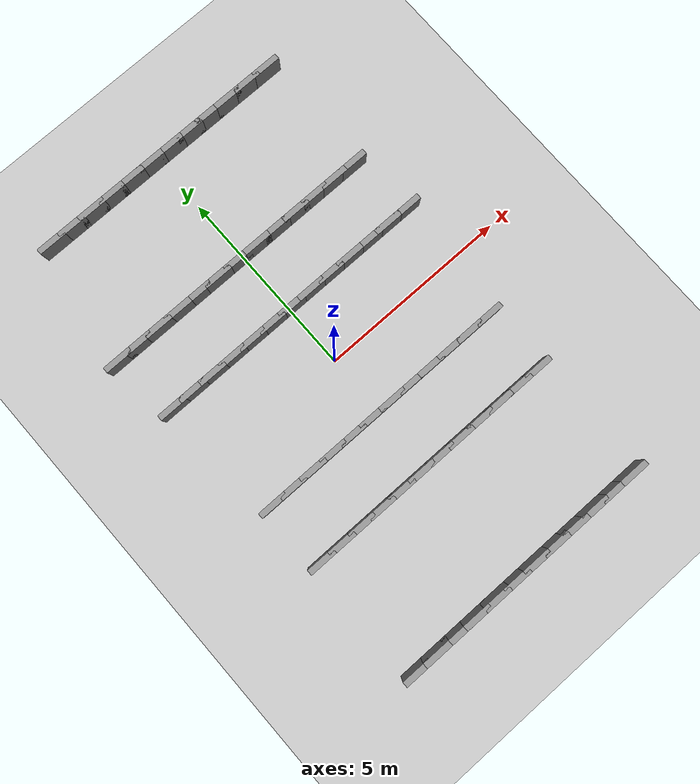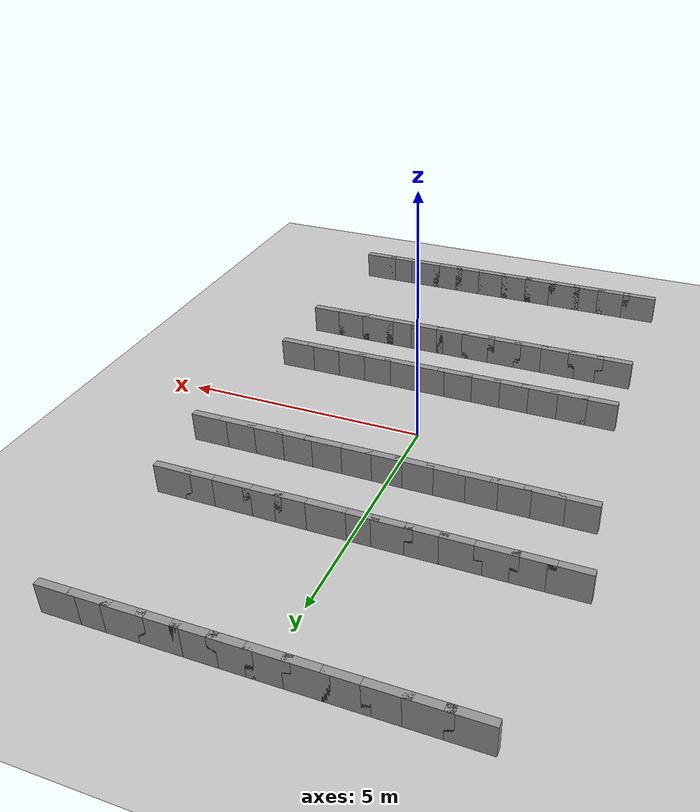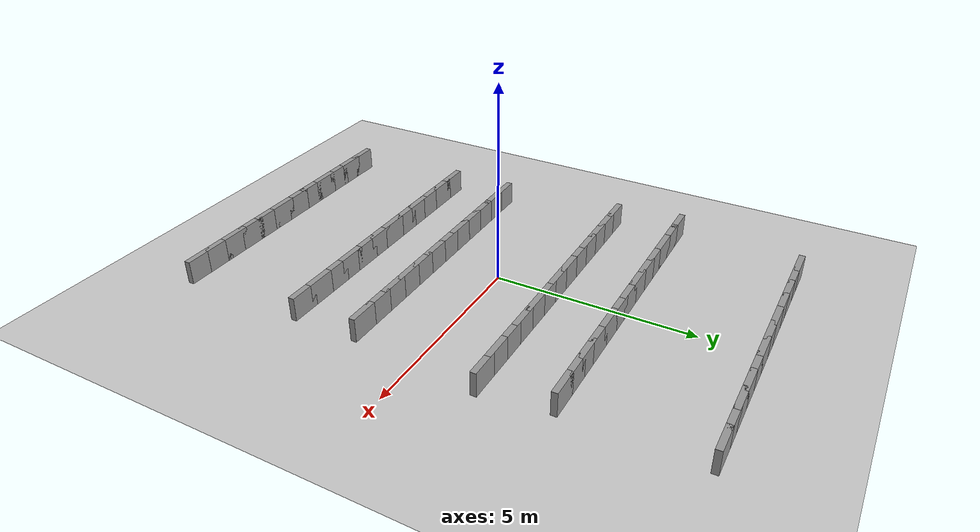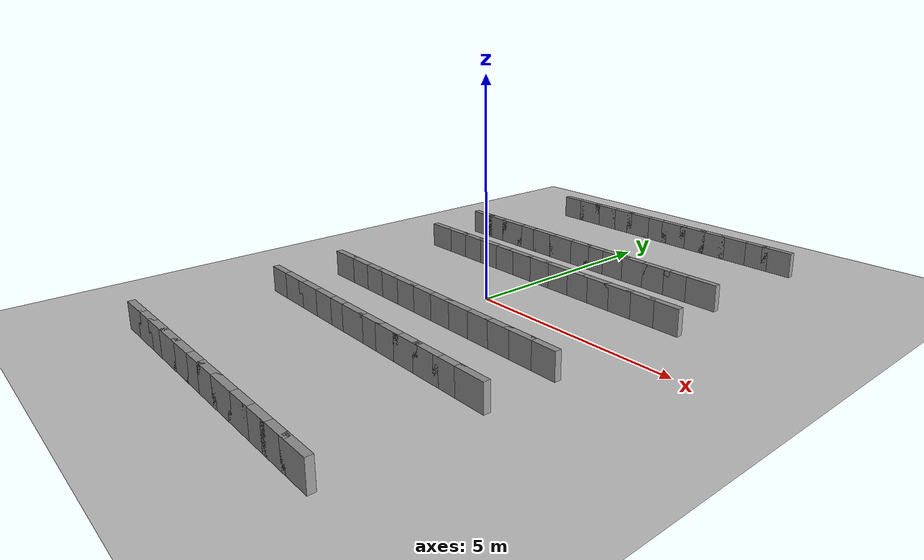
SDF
<sdf version="1.7">
 <world name="default">
  <model name="ground_plane">
   <static>1</static>
   <link name="link">
    <collision name="collision">
     <geometry><plane><normal>0 0 1</normal><size>100 100</size></plane></geometry>
     <surface><friction><ode><mu>100</mu><mu2>50</mu2></ode></friction></surface>
    </collision>
    <visual name="visual">
     <cast_shadows>0</cast_shadows>
     <geometry><plane><normal>0 0 1</normal><size>100 100</size></plane></geometry>
     <material>
      <script><uri>file://media/materials/scripts/gazebo.material</uri><name>Gazebo/Grey</name></script>
     </material>
    </visual>
   </link>
  </model>
  <model name="rand_serp_01">
   <link name="Wall_9">
    <collision name="Wall_9_Collision">
     <geometry><box><size>0.7500 0.1500 0.6000</size></box></geometry>
     <pose>0 0 0.3000 0 -0 0</pose>
    </collision>
    <visual name="Wall_9_Visual">
     <pose>0 0 0.3000 0 -0 0</pose>
     <geometry><box><size>0.7500 0.1500 0.6000</size></box></geometry>
     <material>
      <script><uri>file://media/materials/scripts/gazebo.material</uri><name>Gazebo/Grey</name></script>
      <ambient>1 1 1 1</ambient>
     </material>
    </visual>
    <pose>-3.1786 6.4421 0 0 -0 0.00000</pose>
   </link>
   <link name="Wall_10">
    <collision name="Wall_10_Collision">
     <geometry><box><size>0.7500 0.1500 0.6000</size></box></geometry>
     <pose>0 0 0.3000 0 -0 0</pose>
    </collision>
    <visual name="Wall_10_Visual">
     <pose>0 0 0.3000 0 -0 0</pose>
     <geometry><box><size>0.7500 0.1500 0.6000</size></box></geometry>
     <material>
      <script><uri>file://media/materials/scripts/gazebo.material</uri><name>Gazebo/Grey</name></script>
      <ambient>1 1 1 1</ambient>
     </material>
    </visual>
    <pose>-2.5786 6.4421 0 0 -0 0.00000</pose>
   </link>
   <link name="Wall_11">
    <collision name="Wall_11_Collision">
     <geometry><box><size>0.7500 0.1500 0.6000</size></box></geometry>
     <pose>0 0 0.3000 0 -0 0</pose>
    </collision>
    <visual name="Wall_11_Visual">
     <pose>0 0 0.3000 0 -0 0</pose>
     <geometry><box><size>0.7500 0.1500 0.6000</size></box></geometry>
     <material>
      <script><uri>file://media/materials/scripts/gazebo.material</uri><name>Gazebo/Grey</name></script>
      <ambient>1 1 1 1</ambient>
     </material>
    </visual>
    <pose>-1.9786 6.4421 0 0 -0 0.00000</pose>
   </link>
   <link name="Wall_12">
    <collision name="Wall_12_Collision">
     <geometry><box><size>0.7500 0.1500 0.6000</size></box></geometry>
     <pose>0 0 0.3000 0 -0 0</pose>
    </collision>
    <visual name="Wall_12_Visual">
     <pose>0 0 0.3000 0 -0 0</pose>
     <geometry><box><size>0.7500 0.1500 0.6000</size></box></geometry>
     <material>
      <script><uri>file://media/materials/scripts/gazebo.material</uri><name>Gazebo/Grey</name></script>
      <ambient>1 1 1 1</ambient>
     </material>
    </visual>
    <pose>-1.3786 6.4421 0 0 -0 0.00000</pose>
   </link>
   <link name="Wall_13">
    <collision name="Wall_13_Collision">
     <geometry><box><size>0.7500 0.1500 0.6000</size></box></geometry>
     <pose>0 0 0.3000 0 -0 0</pose>
    </collision>
    <visual name="Wall_13_Visual">
     <pose>0 0 0.3000 0 -0 0</pose>
     <geometry><box><size>0.7500 0.1500 0.6000</size></box></geometry>
     <material>
      <script><uri>file://media/materials/scripts/gazebo.material</uri><name>Gazebo/Grey</name></script>
      <ambient>1 1 1 1</ambient>
     </material>
    </visual>
    <pose>-0.7786 6.4421 0 0 -0 0.00000</pose>
   </link>
   <link name="Wall_14">
    <collision name="Wall_14_Collision">
     <geometry><box><size>0.7500 0.1500 0.6000</size></box></geometry>
     <pose>0 0 0.3000 0 -0 0</pose>
    </collision>
    <visual name="Wall_14_Visual">
     <pose>0 0 0.3000 0 -0 0</pose>
     <geometry><box><size>0.7500 0.1500 0.6000</size></box></geometry>
     <material>
      <script><uri>file://media/materials/scripts/gazebo.material</uri><name>Gazebo/Grey</name></script>
      <ambient>1 1 1 1</ambient>
     </material>
    </visual>
    <pose>-0.1786 6.4421 0 0 -0 0.00000</pose>
   </link>
   <link name="Wall_15">
    <collision name="Wall_15_Collision">
     <geometry><box><size>0.7500 0.1500 0.6000</size></box></geometry>
     <pose>0 0 0.3000 0 -0 0</pose>
    </collision>
    <visual name="Wall_15_Visual">
     <pose>0 0 0.3000 0 -0 0</pose>
     <geometry><box><size>0.7500 0.1500 0.6000</size></box></geometry>
     <material>
      <script><uri>file://media/materials/scripts/gazebo.material</uri><name>Gazebo/Grey</name></script>
      <ambient>1 1 1 1</ambient>
     </material>
    </visual>
    <pose>0.4214 6.4421 0 0 -0 0.00000</pose>
   </link>
   <link name="Wall_16">
    <collision name="Wall_16_Collision">
     <geometry><box><size>0.7500 0.1500 0.6000</size></box></geometry>
     <pose>0 0 0.3000 0 -0 0</pose>
    </collision>
    <visual name="Wall_16_Visual">
     <pose>0 0 0.3000 0 -0 0</pose>
     <geometry><box><size>0.7500 0.1500 0.6000</size></box></geometry>
     <material>
      <script><uri>file://media/materials/scripts/gazebo.material</uri><name>Gazebo/Grey</name></script>
      <ambient>1 1 1 1</ambient>
     </material>
    </visual>
    <pose>1.0214 6.4421 0 0 -0 0.00000</pose>
   </link>
   <link name="Wall_17">
    <collision name="Wall_17_Collision">
     <geometry><box><size>0.7500 0.1500 0.6000</size></box></geometry>
     <pose>0 0 0.3000 0 -0 0</pose>
    </collision>
    <visual name="Wall_17_Visual">
     <pose>0 0 0.3000 0 -0 0</pose>
     <geometry><box><size>0.7500 0.1500 0.6000</size></box></geometry>
     <material>
      <script><uri>file://media/materials/scripts/gazebo.material</uri><name>Gazebo/Grey</name></script>
      <ambient>1 1 1 1</ambient>
     </material>
    </visual>
    <pose>1.6214 6.4421 0 0 -0 0.00000</pose>
   </link>
   <link name="Wall_18">
    <collision name="Wall_18_Collision">
     <geometry><box><size>0.7500 0.1500 0.6000</size></box></geometry>
     <pose>0 0 0.3000 0 -0 0</pose>
    </collision>
    <visual name="Wall_18_Visual">
     <pose>0 0 0.3000 0 -0 0</pose>
     <geometry><box><size>0.7500 0.1500 0.6000</size></box></geometry>
     <material>
      <script><uri>file://media/materials/scripts/gazebo.material</uri><name>Gazebo/Grey</name></script>
      <ambient>1 1 1 1</ambient>
     </material>
    </visual>
    <pose>2.2214 6.4421 0 0 -0 0.00000</pose>
   </link>
   <link name="Wall_19">
    <collision name="Wall_19_Collision">
     <geometry><box><size>0.7500 0.1500 0.6000</size></box></geometry>
     <pose>0 0 0.3000 0 -0 0</pose>
    </collision>
    <visual name="Wall_19_Visual">
     <pose>0 0 0.3000 0 -0 0</pose>
     <geometry><box><size>0.7500 0.1500 0.6000</size></box></geometry>
     <material>
      <script><uri>file://media/materials/scripts/gazebo.material</uri><name>Gazebo/Grey</name></script>
      <ambient>1 1 1 1</ambient>
     </material>
    </visual>
    <pose>2.8214 6.4421 0 0 -0 0.00000</pose>
   </link>
   <link name="Wall_20">
    <collision name="Wall_20_Collision">
     <geometry><box><size>0.7500 0.1500 0.6000</size></box></geometry>
     <pose>0 0 0.3000 0 -0 0</pose>
    </collision>
    <visual name="Wall_20_Visual">
     <pose>0 0 0.3000 0 -0 0</pose>
     <geometry><box><size>0.7500 0.1500 0.6000</size></box></geometry>
     <material>
      <script><uri>file://media/materials/scripts/gazebo.material</uri><name>Gazebo/Grey</name></script>
      <ambient>1 1 1 1</ambient>
     </material>
    </visual>
    <pose>3.4214 6.4421 0 0 -0 0.00000</pose>
   </link>
   <link name="Wall_57">
    <collision name="Wall_57_Collision">
     <geometry><box><size>0.7500 0.1500 0.6000</size></box></geometry>
     <pose>0 0 0.3000 0 -0 0</pose>
    </collision>
    <visual name="Wall_57_Visual">
     <pose>0 0 0.3000 0 -0 0</pose>
     <geometry><box><size>0.7500 0.1500 0.6000</size></box></geometry>
     <material>
      <script><uri>file://media/materials/scripts/gazebo.material</uri><name>Gazebo/Grey</name></script>
      <ambient>1 1 1 1</ambient>
     </material>
    </visual>
    <pose>3.3555 -1.5924 0 0 -0 3.14159</pose>
   </link>
   <link name="Wall_58">
    <collision name="Wall_58_Collision">
     <geometry><box><size>0.7500 0.1500 0.6000</size></box></geometry>
     <pose>0 0 0.3000 0 -0 0</pose>
    </collision>
    <visual name="Wall_58_Visual">
     <pose>0 0 0.3000 0 -0 0</pose>
     <geometry><box><size>0.7500 0.1500 0.6000</size></box></geometry>
     <material>
      <script><uri>file://media/materials/scripts/gazebo.material</uri><name>Gazebo/Grey</name></script>
      <ambient>1 1 1 1</ambient>
     </material>
    </visual>
    <pose>2.7555 -1.5924 0 0 -0 3.14159</pose>
   </link>
   <link name="Wall_59">
    <collision name="Wall_59_Collision">
     <geometry><box><size>0.7500 0.1500 0.6000</size></box></geometry>
     <pose>0 0 0.3000 0 -0 0</pose>
    </collision>
    <visual name="Wall_59_Visual">
     <pose>0 0 0.3000 0 -0 0</pose>
     <geometry><box><size>0.7500 0.1500 0.6000</size></box></geometry>
     <material>
      <script><uri>file://media/materials/scripts/gazebo.material</uri><name>Gazebo/Grey</name></script>
      <ambient>1 1 1 1</ambient>
     </material>
    </visual>
    <pose>2.1555 -1.5924 0 0 -0 3.14159</pose>
   </link>
   <link name="Wall_60">
    <collision name="Wall_60_Collision">
     <geometry><box><size>0.7500 0.1500 0.6000</size></box></geometry>
     <pose>0 0 0.3000 0 -0 0</pose>
    </collision>
    <visual name="Wall_60_Visual">
     <pose>0 0 0.3000 0 -0 0</pose>
     <geometry><box><size>0.7500 0.1500 0.6000</size></box></geometry>
     <material>
      <script><uri>file://media/materials/scripts/gazebo.material</uri><name>Gazebo/Grey</name></script>
      <ambient>1 1 1 1</ambient>
     </material>
    </visual>
    <pose>1.5555 -1.5924 0 0 -0 3.14159</pose>
   </link>
   <link name="Wall_61">
    <collision name="Wall_61_Collision">
     <geometry><box><size>0.7500 0.1500 0.6000</size></box></geometry>
     <pose>0 0 0.3000 0 -0 0</pose>
    </collision>
    <visual name="Wall_61_Visual">
     <pose>0 0 0.3000 0 -0 0</pose>
     <geometry><box><size>0.7500 0.1500 0.6000</size></box></geometry>
     <material>
      <script><uri>file://media/materials/scripts/gazebo.material</uri><name>Gazebo/Grey</name></script>
      <ambient>1 1 1 1</ambient>
     </material>
    </visual>
    <pose>0.9555 -1.5924 0 0 -0 3.14159</pose>
   </link>
   <link name="Wall_62">
    <collision name="Wall_62_Collision">
     <geometry><box><size>0.7500 0.1500 0.6000</size></box></geometry>
     <pose>0 0 0.3000 0 -0 0</pose>
    </collision>
    <visual name="Wall_62_Visual">
     <pose>0 0 0.3000 0 -0 0</pose>
     <geometry><box><size>0.7500 0.1500 0.6000</size></box></geometry>
     <material>
      <script><uri>file://media/materials/scripts/gazebo.material</uri><name>Gazebo/Grey</name></script>
      <ambient>1 1 1 1</ambient>
     </material>
    </visual>
    <pose>0.3555 -1.5924 0 0 -0 3.14159</pose>
   </link>
   <link name="Wall_63">
    <collision name="Wall_63_Collision">
     <geometry><box><size>0.7500 0.1500 0.6000</size></box></geometry>
     <pose>0 0 0.3000 0 -0 0</pose>
    </collision>
    <visual name="Wall_63_Visual">
     <pose>0 0 0.3000 0 -0 0</pose>
     <geometry><box><size>0.7500 0.1500 0.6000</size></box></geometry>
     <material>
      <script><uri>file://media/materials/scripts/gazebo.material</uri><name>Gazebo/Grey</name></script>
      <ambient>1 1 1 1</ambient>
     </material>
    </visual>
    <pose>-0.2445 -1.5924 0 0 -0 3.14159</pose>
   </link>
   <link name="Wall_64">
    <collision name="Wall_64_Collision">
     <geometry><box><size>0.7500 0.1500 0.6000</size></box></geometry>
     <pose>0 0 0.3000 0 -0 0</pose>
    </collision>
    <visual name="Wall_64_Visual">
     <pose>0 0 0.3000 0 -0 0</pose>
     <geometry><box><size>0.7500 0.1500 0.6000</size></box></geometry>
     <material>
      <script><uri>file://media/materials/scripts/gazebo.material</uri><name>Gazebo/Grey</name></script>
      <ambient>1 1 1 1</ambient>
     </material>
    </visual>
    <pose>-0.8445 -1.5924 0 0 -0 3.14159</pose>
   </link>
   <link name="Wall_65">
    <collision name="Wall_65_Collision">
     <geometry><box><size>0.7500 0.1500 0.6000</size></box></geometry>
     <pose>0 0 0.3000 0 -0 0</pose>
    </collision>
    <visual name="Wall_65_Visual">
     <pose>0 0 0.3000 0 -0 0</pose>
     <geometry><box><size>0.7500 0.1500 0.6000</size></box></geometry>
     <material>
      <script><uri>file://media/materials/scripts/gazebo.material</uri><name>Gazebo/Grey</name></script>
      <ambient>1 1 1 1</ambient>
     </material>
    </visual>
    <pose>-1.4445 -1.5924 0 0 -0 3.14159</pose>
   </link>
   <link name="Wall_66">
    <collision name="Wall_66_Collision">
     <geometry><box><size>0.7500 0.1500 0.6000</size></box></geometry>
     <pose>0 0 0.3000 0 -0 0</pose>
    </collision>
    <visual name="Wall_66_Visual">
     <pose>0 0 0.3000 0 -0 0</pose>
     <geometry><box><size>0.7500 0.1500 0.6000</size></box></geometry>
     <material>
      <script><uri>file://media/materials/scripts/gazebo.material</uri><name>Gazebo/Grey</name></script>
      <ambient>1 1 1 1</ambient>
     </material>
    </visual>
    <pose>-2.0445 -1.5924 0 0 -0 3.14159</pose>
   </link>
   <link name="Wall_67">
    <collision name="Wall_67_Collision">
     <geometry><box><size>0.7500 0.1500 0.6000</size></box></geometry>
     <pose>0 0 0.3000 0 -0 0</pose>
    </collision>
    <visual name="Wall_67_Visual">
     <pose>0 0 0.3000 0 -0 0</pose>
     <geometry><box><size>0.7500 0.1500 0.6000</size></box></geometry>
     <material>
      <script><uri>file://media/materials/scripts/gazebo.material</uri><name>Gazebo/Grey</name></script>
      <ambient>1 1 1 1</ambient>
     </material>
    </visual>
    <pose>-2.6445 -1.5924 0 0 -0 3.14159</pose>
   </link>
   <link name="Wall_68">
    <collision name="Wall_68_Collision">
     <geometry><box><size>0.7500 0.1500 0.6000</size></box></geometry>
     <pose>0 0 0.3000 0 -0 0</pose>
    </collision>
    <visual name="Wall_68_Visual">
     <pose>0 0 0.3000 0 -0 0</pose>
     <geometry><box><size>0.7500 0.1500 0.6000</size></box></geometry>
     <material>
      <script><uri>file://media/materials/scripts/gazebo.material</uri><name>Gazebo/Grey</name></script>
      <ambient>1 1 1 1</ambient>
     </material>
    </visual>
    <pose>-3.2445 -1.5924 0 0 -0 3.14159</pose>
   </link>
   <link name="Wall_89">
    <collision name="Wall_89_Collision">
     <geometry><box><size>0.7500 0.1500 0.6000</size></box></geometry>
     <pose>0 0 0.3000 0 -0 0</pose>
    </collision>
    <visual name="Wall_89_Visual">
     <pose>0 0 0.3000 0 -0 0</pose>
     <geometry><box><size>0.7500 0.1500 0.6000</size></box></geometry>
     <material>
      <script><uri>file://media/materials/scripts/gazebo.material</uri><name>Gazebo/Grey</name></script>
      <ambient>1 1 1 1</ambient>
     </material>
    </visual>
    <pose>-3.2357 -3.2573 0 0 -0 0.00000</pose>
   </link>
   <link name="Wall_90">
    <collision name="Wall_90_Collision">
     <geometry><box><size>0.7500 0.1500 0.6000</size></box></geometry>
     <pose>0 0 0.3000 0 -0 0</pose>
    </collision>
    <visual name="Wall_90_Visual">
     <pose>0 0 0.3000 0 -0 0</pose>
     <geometry><box><size>0.7500 0.1500 0.6000</size></box></geometry>
     <material>
      <script><uri>file://media/materials/scripts/gazebo.material</uri><name>Gazebo/Grey</name></script>
      <ambient>1 1 1 1</ambient>
     </material>
    </visual>
    <pose>-2.6357 -3.2573 0 0 -0 0.00000</pose>
   </link>
   <link name="Wall_91">
    <collision name="Wall_91_Collision">
     <geometry><box><size>0.7500 0.1500 0.6000</size></box></geometry>
     <pose>0 0 0.3000 0 -0 0</pose>
    </collision>
    <visual name="Wall_91_Visual">
     <pose>0 0 0.3000 0 -0 0</pose>
     <geometry><box><size>0.7500 0.1500 0.6000</size></box></geometry>
     <material>
      <script><uri>file://media/materials/scripts/gazebo.material</uri><name>Gazebo/Grey</name></script>
      <ambient>1 1 1 1</ambient>
     </material>
    </visual>
    <pose>-2.0357 -3.2573 0 0 -0 0.00000</pose>
   </link>
   <link name="Wall_92">
    <collision name="Wall_92_Collision">
     <geometry><box><size>0.7500 0.1500 0.6000</size></box></geometry>
     <pose>0 0 0.3000 0 -0 0</pose>
    </collision>
    <visual name="Wall_92_Visual">
     <pose>0 0 0.3000 0 -0 0</pose>
     <geometry><box><size>0.7500 0.1500 0.6000</size></box></geometry>
     <material>
      <script><uri>file://media/materials/scripts/gazebo.material</uri><name>Gazebo/Grey</name></script>
      <ambient>1 1 1 1</ambient>
     </material>
    </visual>
    <pose>-1.4357 -3.2573 0 0 -0 0.00000</pose>
   </link>
   <link name="Wall_93">
    <collision name="Wall_93_Collision">
     <geometry><box><size>0.7500 0.1500 0.6000</size></box></geometry>
     <pose>0 0 0.3000 0 -0 0</pose>
    </collision>
    <visual name="Wall_93_Visual">
     <pose>0 0 0.3000 0 -0 0</pose>
     <geometry><box><size>0.7500 0.1500 0.6000</size></box></geometry>
     <material>
      <script><uri>file://media/materials/scripts/gazebo.material</uri><name>Gazebo/Grey</name></script>
      <ambient>1 1 1 1</ambient>
     </material>
    </visual>
    <pose>-0.8357 -3.2573 0 0 -0 0.00000</pose>
   </link>
   <link name="Wall_94">
    <collision name="Wall_94_Collision">
     <geometry><box><size>0.7500 0.1500 0.6000</size></box></geometry>
     <pose>0 0 0.3000 0 -0 0</pose>
    </collision>
    <visual name="Wall_94_Visual">
     <pose>0 0 0.3000 0 -0 0</pose>
     <geometry><box><size>0.7500 0.1500 0.6000</size></box></geometry>
     <material>
      <script><uri>file://media/materials/scripts/gazebo.material</uri><name>Gazebo/Grey</name></script>
      <ambient>1 1 1 1</ambient>
     </material>
    </visual>
    <pose>-0.2357 -3.2573 0 0 -0 0.00000</pose>
   </link>
   <link name="Wall_95">
    <collision name="Wall_95_Collision">
     <geometry><box><size>0.7500 0.1500 0.6000</size></box></geometry>
     <pose>0 0 0.3000 0 -0 0</pose>
    </collision>
    <visual name="Wall_95_Visual">
     <pose>0 0 0.3000 0 -0 0</pose>
     <geometry><box><size>0.7500 0.1500 0.6000</size></box></geometry>
     <material>
      <script><uri>file://media/materials/scripts/gazebo.material</uri><name>Gazebo/Grey</name></script>
      <ambient>1 1 1 1</ambient>
     </material>
    </visual>
    <pose>0.3643 -3.2573 0 0 -0 0.00000</pose>
   </link>
   <link name="Wall_96">
    <collision name="Wall_96_Collision">
     <geometry><box><size>0.7500 0.1500 0.6000</size></box></geometry>
     <pose>0 0 0.3000 0 -0 0</pose>
    </collision>
    <visual name="Wall_96_Visual">
     <pose>0 0 0.3000 0 -0 0</pose>
     <geometry><box><size>0.7500 0.1500 0.6000</size></box></geometry>
     <material>
      <script><uri>file://media/materials/scripts/gazebo.material</uri><name>Gazebo/Grey</name></script>
      <ambient>1 1 1 1</ambient>
     </material>
    </visual>
    <pose>0.9643 -3.2573 0 0 -0 0.00000</pose>
   </link>
   <link name="Wall_97">
    <collision name="Wall_97_Collision">
     <geometry><box><size>0.7500 0.1500 0.6000</size></box></geometry>
     <pose>0 0 0.3000 0 -0 0</pose>
    </collision>
    <visual name="Wall_97_Visual">
     <pose>0 0 0.3000 0 -0 0</pose>
     <geometry><box><size>0.7500 0.1500 0.6000</size></box></geometry>
     <material>
      <script><uri>file://media/materials/scripts/gazebo.material</uri><name>Gazebo/Grey</name></script>
      <ambient>1 1 1 1</ambient>
     </material>
    </visual>
    <pose>1.5643 -3.2573 0 0 -0 0.00000</pose>
   </link>
   <link name="Wall_98">
    <collision name="Wall_98_Collision">
     <geometry><box><size>0.7500 0.1500 0.6000</size></box></geometry>
     <pose>0 0 0.3000 0 -0 0</pose>
    </collision>
    <visual name="Wall_98_Visual">
     <pose>0 0 0.3000 0 -0 0</pose>
     <geometry><box><size>0.7500 0.1500 0.6000</size></box></geometry>
     <material>
      <script><uri>file://media/materials/scripts/gazebo.material</uri><name>Gazebo/Grey</name></script>
      <ambient>1 1 1 1</ambient>
     </material>
    </visual>
    <pose>2.1643 -3.2573 0 0 -0 0.00000</pose>
   </link>
   <link name="Wall_99">
    <collision name="Wall_99_Collision">
     <geometry><box><size>0.7500 0.1500 0.6000</size></box></geometry>
     <pose>0 0 0.3000 0 -0 0</pose>
    </collision>
    <visual name="Wall_99_Visual">
     <pose>0 0 0.3000 0 -0 0</pose>
     <geometry><box><size>0.7500 0.1500 0.6000</size></box></geometry>
     <material>
      <script><uri>file://media/materials/scripts/gazebo.material</uri><name>Gazebo/Grey</name></script>
      <ambient>1 1 1 1</ambient>
     </material>
    </visual>
    <pose>2.7643 -3.2573 0 0 -0 0.00000</pose>
   </link>
   <link name="Wall_100">
    <collision name="Wall_100_Collision">
     <geometry><box><size>0.7500 0.1500 0.6000</size></box></geometry>
     <pose>0 0 0.3000 0 -0 0</pose>
    </collision>
    <visual name="Wall_100_Visual">
     <pose>0 0 0.3000 0 -0 0</pose>
     <geometry><box><size>0.7500 0.1500 0.6000</size></box></geometry>
     <material>
      <script><uri>file://media/materials/scripts/gazebo.material</uri><name>Gazebo/Grey</name></script>
      <ambient>1 1 1 1</ambient>
     </material>
    </visual>
    <pose>3.3643 -3.2573 0 0 -0 0.00000</pose>
   </link>
   <link name="Wall_118">
    <collision name="Wall_118_Collision">
     <geometry><box><size>0.7500 0.1500 0.6000</size></box></geometry>
     <pose>0 0 0.3000 0 -0 0</pose>
    </collision>
    <visual name="Wall_118_Visual">
     <pose>0 0 0.3000 0 -0 0</pose>
     <geometry><box><size>0.7500 0.1500 0.6000</size></box></geometry>
     <material>
      <script><uri>file://media/materials/scripts/gazebo.material</uri><name>Gazebo/Grey</name></script>
      <ambient>1 1 1 1</ambient>
     </material>
    </visual>
    <pose>-3.7786 3.2573 0 0 -0 0.00000</pose>
   </link>
   <link name="Wall_119">
    <collision name="Wall_119_Collision">
     <geometry><box><size>0.7500 0.1500 0.6000</size></box></geometry>
     <pose>0 0 0.3000 0 -0 0</pose>
    </collision>
    <visual name="Wall_119_Visual">
     <pose>0 0 0.3000 0 -0 0</pose>
     <geometry><box><size>0.7500 0.1500 0.6000</size></box></geometry>
     <material>
      <script><uri>file://media/materials/scripts/gazebo.material</uri><name>Gazebo/Grey</name></script>
      <ambient>1 1 1 1</ambient>
     </material>
    </visual>
    <pose>-3.1786 3.2573 0 0 -0 0.00000</pose>
   </link>
   <link name="Wall_120">
    <collision name="Wall_120_Collision">
     <geometry><box><size>0.7500 0.1500 0.6000</size></box></geometry>
     <pose>0 0 0.3000 0 -0 0</pose>
    </collision>
    <visual name="Wall_120_Visual">
     <pose>0 0 0.3000 0 -0 0</pose>
     <geometry><box><size>0.7500 0.1500 0.6000</size></box></geometry>
     <material>
      <script><uri>file://media/materials/scripts/gazebo.material</uri><name>Gazebo/Grey</name></script>
      <ambient>1 1 1 1</ambient>
     </material>
    </visual>
    <pose>-2.5786 3.2573 0 0 -0 0.00000</pose>
   </link>
   <link name="Wall_121">
    <collision name="Wall_121_Collision">
     <geometry><box><size>0.7500 0.1500 0.6000</size></box></geometry>
     <pose>0 0 0.3000 0 -0 0</pose>
    </collision>
    <visual name="Wall_121_Visual">
     <pose>0 0 0.3000 0 -0 0</pose>
     <geometry><box><size>0.7500 0.1500 0.6000</size></box></geometry>
     <material>
      <script><uri>file://media/materials/scripts/gazebo.material</uri><name>Gazebo/Grey</name></script>
      <ambient>1 1 1 1</ambient>
     </material>
    </visual>
    <pose>-1.9786 3.2573 0 0 -0 0.00000</pose>
   </link>
   <link name="Wall_122">
    <collision name="Wall_122_Collision">
     <geometry><box><size>0.7500 0.1500 0.6000</size></box></geometry>
     <pose>0 0 0.3000 0 -0 0</pose>
    </collision>
    <visual name="Wall_122_Visual">
     <pose>0 0 0.3000 0 -0 0</pose>
     <geometry><box><size>0.7500 0.1500 0.6000</size></box></geometry>
     <material>
      <script><uri>file://media/materials/scripts/gazebo.material</uri><name>Gazebo/Grey</name></script>
      <ambient>1 1 1 1</ambient>
     </material>
    </visual>
    <pose>-1.3786 3.2573 0 0 -0 0.00000</pose>
   </link>
   <link name="Wall_123">
    <collision name="Wall_123_Collision">
     <geometry><box><size>0.7500 0.1500 0.6000</size></box></geometry>
     <pose>0 0 0.3000 0 -0 0</pose>
    </collision>
    <visual name="Wall_123_Visual">
     <pose>0 0 0.3000 0 -0 0</pose>
     <geometry><box><size>0.7500 0.1500 0.6000</size></box></geometry>
     <material>
      <script><uri>file://media/materials/scripts/gazebo.material</uri><name>Gazebo/Grey</name></script>
      <ambient>1 1 1 1</ambient>
     </material>
    </visual>
    <pose>-0.7786 3.2573 0 0 -0 0.00000</pose>
   </link>
   <link name="Wall_124">
    <collision name="Wall_124_Collision">
     <geometry><box><size>0.7500 0.1500 0.6000</size></box></geometry>
     <pose>0 0 0.3000 0 -0 0</pose>
    </collision>
    <visual name="Wall_124_Visual">
     <pose>0 0 0.3000 0 -0 0</pose>
     <geometry><box><size>0.7500 0.1500 0.6000</size></box></geometry>
     <material>
      <script><uri>file://media/materials/scripts/gazebo.material</uri><name>Gazebo/Grey</name></script>
      <ambient>1 1 1 1</ambient>
     </material>
    </visual>
    <pose>-0.1786 3.2573 0 0 -0 0.00000</pose>
   </link>
   <link name="Wall_125">
    <collision name="Wall_125_Collision">
     <geometry><box><size>0.7500 0.1500 0.6000</size></box></geometry>
     <pose>0 0 0.3000 0 -0 0</pose>
    </collision>
    <visual name="Wall_125_Visual">
     <pose>0 0 0.3000 0 -0 0</pose>
     <geometry><box><size>0.7500 0.1500 0.6000</size></box></geometry>
     <material>
      <script><uri>file://media/materials/scripts/gazebo.material</uri><name>Gazebo/Grey</name></script>
      <ambient>1 1 1 1</ambient>
     </material>
    </visual>
    <pose>0.4214 3.2573 0 0 -0 0.00000</pose>
   </link>
   <link name="Wall_126">
    <collision name="Wall_126_Collision">
     <geometry><box><size>0.7500 0.1500 0.6000</size></box></geometry>
     <pose>0 0 0.3000 0 -0 0</pose>
    </collision>
    <visual name="Wall_126_Visual">
     <pose>0 0 0.3000 0 -0 0</pose>
     <geometry><box><size>0.7500 0.1500 0.6000</size></box></geometry>
     <material>
      <script><uri>file://media/materials/scripts/gazebo.material</uri><name>Gazebo/Grey</name></script>
      <ambient>1 1 1 1</ambient>
     </material>
    </visual>
    <pose>1.0214 3.2573 0 0 -0 0.00000</pose>
   </link>
   <link name="Wall_127">
    <collision name="Wall_127_Collision">
     <geometry><box><size>0.7500 0.1500 0.6000</size></box></geometry>
     <pose>0 0 0.3000 0 -0 0</pose>
    </collision>
    <visual name="Wall_127_Visual">
     <pose>0 0 0.3000 0 -0 0</pose>
     <geometry><box><size>0.7500 0.1500 0.6000</size></box></geometry>
     <material>
      <script><uri>file://media/materials/scripts/gazebo.material</uri><name>Gazebo/Grey</name></script>
      <ambient>1 1 1 1</ambient>
     </material>
    </visual>
    <pose>1.6214 3.2573 0 0 -0 0.00000</pose>
   </link>
   <link name="Wall_128">
    <collision name="Wall_128_Collision">
     <geometry><box><size>0.7500 0.1500 0.6000</size></box></geometry>
     <pose>0 0 0.3000 0 -0 0</pose>
    </collision>
    <visual name="Wall_128_Visual">
     <pose>0 0 0.3000 0 -0 0</pose>
     <geometry><box><size>0.7500 0.1500 0.6000</size></box></geometry>
     <material>
      <script><uri>file://media/materials/scripts/gazebo.material</uri><name>Gazebo/Grey</name></script>
      <ambient>1 1 1 1</ambient>
     </material>
    </visual>
    <pose>2.2214 3.2573 0 0 -0 0.00000</pose>
   </link>
   <link name="Wall_129">
    <collision name="Wall_129_Collision">
     <geometry><box><size>0.7500 0.1500 0.6000</size></box></geometry>
     <pose>0 0 0.3000 0 -0 0</pose>
    </collision>
    <visual name="Wall_129_Visual">
     <pose>0 0 0.3000 0 -0 0</pose>
     <geometry><box><size>0.7500 0.1500 0.6000</size></box></geometry>
     <material>
      <script><uri>file://media/materials/scripts/gazebo.material</uri><name>Gazebo/Grey</name></script>
      <ambient>1 1 1 1</ambient>
     </material>
    </visual>
    <pose>2.8214 3.2573 0 0 -0 0.00000</pose>
   </link>
   <link name="Wall_130">
    <collision name="Wall_130_Collision">
     <geometry><box><size>0.7500 0.1500 0.6000</size></box></geometry>
     <pose>0 0 0.3000 0 -0 0</pose>
    </collision>
    <visual name="Wall_130_Visual">
     <pose>0 0 0.3000 0 -0 0</pose>
     <geometry><box><size>0.7500 0.1500 0.6000</size></box></geometry>
     <material>
      <script><uri>file://media/materials/scripts/gazebo.material</uri><name>Gazebo/Grey</name></script>
      <ambient>1 1 1 1</ambient>
     </material>
    </visual>
    <pose>3.4214 3.2573 0 0 -0 0.00000</pose>
   </link>
   <link name="Wall_150">
    <collision name="Wall_150_Collision">
     <geometry><box><size>0.7500 0.1500 0.6000</size></box></geometry>
     <pose>0 0 0.3000 0 -0 0</pose>
    </collision>
    <visual name="Wall_150_Visual">
     <pose>0 0 0.3000 0 -0 0</pose>
     <geometry><box><size>0.7500 0.1500 0.6000</size></box></geometry>
     <material>
      <script><uri>file://media/materials/scripts/gazebo.material</uri><name>Gazebo/Grey</name></script>
      <ambient>1 1 1 1</ambient>
     </material>
    </visual>
    <pose>3.6588 1.5924 0 0 -0 3.14159</pose>
   </link>
   <link name="Wall_151">
    <collision name="Wall_151_Collision">
     <geometry><box><size>0.7500 0.1500 0.6000</size></box></geometry>
     <pose>0 0 0.3000 0 -0 0</pose>
    </collision>
    <visual name="Wall_151_Visual">
     <pose>0 0 0.3000 0 -0 0</pose>
     <geometry><box><size>0.7500 0.1500 0.6000</size></box></geometry>
     <material>
      <script><uri>file://media/materials/scripts/gazebo.material</uri><name>Gazebo/Grey</name></script>
      <ambient>1 1 1 1</ambient>
     </material>
    </visual>
    <pose>3.0588 1.5924 0 0 -0 3.14159</pose>
   </link>
   <link name="Wall_152">
    <collision name="Wall_152_Collision">
     <geometry><box><size>0.7500 0.1500 0.6000</size></box></geometry>
     <pose>0 0 0.3000 0 -0 0</pose>
    </collision>
    <visual name="Wall_152_Visual">
     <pose>0 0 0.3000 0 -0 0</pose>
     <geometry><box><size>0.7500 0.1500 0.6000</size></box></geometry>
     <material>
      <script><uri>file://media/materials/scripts/gazebo.material</uri><name>Gazebo/Grey</name></script>
      <ambient>1 1 1 1</ambient>
     </material>
    </visual>
    <pose>2.4588 1.5924 0 0 -0 3.14159</pose>
   </link>
   <link name="Wall_153">
    <collision name="Wall_153_Collision">
     <geometry><box><size>0.7500 0.1500 0.6000</size></box></geometry>
     <pose>0 0 0.3000 0 -0 0</pose>
    </collision>
    <visual name="Wall_153_Visual">
     <pose>0 0 0.3000 0 -0 0</pose>
     <geometry><box><size>0.7500 0.1500 0.6000</size></box></geometry>
     <material>
      <script><uri>file://media/materials/scripts/gazebo.material</uri><name>Gazebo/Grey</name></script>
      <ambient>1 1 1 1</ambient>
     </material>
    </visual>
    <pose>1.8588 1.5924 0 0 -0 3.14159</pose>
   </link>
   <link name="Wall_154">
    <collision name="Wall_154_Collision">
     <geometry><box><size>0.7500 0.1500 0.6000</size></box></geometry>
     <pose>0 0 0.3000 0 -0 0</pose>
    </collision>
    <visual name="Wall_154_Visual">
     <pose>0 0 0.3000 0 -0 0</pose>
     <geometry><box><size>0.7500 0.1500 0.6000</size></box></geometry>
     <material>
      <script><uri>file://media/materials/scripts/gazebo.material</uri><name>Gazebo/Grey</name></script>
      <ambient>1 1 1 1</ambient>
     </material>
    </visual>
    <pose>1.2588 1.5924 0 0 -0 3.14159</pose>
   </link>
   <link name="Wall_155">
    <collision name="Wall_155_Collision">
     <geometry><box><size>0.7500 0.1500 0.6000</size></box></geometry>
     <pose>0 0 0.3000 0 -0 0</pose>
    </collision>
    <visual name="Wall_155_Visual">
     <pose>0 0 0.3000 0 -0 0</pose>
     <geometry><box><size>0.7500 0.1500 0.6000</size></box></geometry>
     <material>
      <script><uri>file://media/materials/scripts/gazebo.material</uri><name>Gazebo/Grey</name></script>
      <ambient>1 1 1 1</ambient>
     </material>
    </visual>
    <pose>0.6588 1.5924 0 0 -0 3.14159</pose>
   </link>
   <link name="Wall_156">
    <collision name="Wall_156_Collision">
     <geometry><box><size>0.7500 0.1500 0.6000</size></box></geometry>
     <pose>0 0 0.3000 0 -0 0</pose>
    </collision>
    <visual name="Wall_156_Visual">
     <pose>0 0 0.3000 0 -0 0</pose>
     <geometry><box><size>0.7500 0.1500 0.6000</size></box></geometry>
     <material>
      <script><uri>file://media/materials/scripts/gazebo.material</uri><name>Gazebo/Grey</name></script>
      <ambient>1 1 1 1</ambient>
     </material>
    </visual>
    <pose>0.0588 1.5924 0 0 -0 3.14159</pose>
   </link>
   <link name="Wall_157">
    <collision name="Wall_157_Collision">
     <geometry><box><size>0.7500 0.1500 0.6000</size></box></geometry>
     <pose>0 0 0.3000 0 -0 0</pose>
    </collision>
    <visual name="Wall_157_Visual">
     <pose>0 0 0.3000 0 -0 0</pose>
     <geometry><box><size>0.7500 0.1500 0.6000</size></box></geometry>
     <material>
      <script><uri>file://media/materials/scripts/gazebo.material</uri><name>Gazebo/Grey</name></script>
      <ambient>1 1 1 1</ambient>
     </material>
    </visual>
    <pose>-0.5412 1.5924 0 0 -0 3.14159</pose>
   </link>
   <link name="Wall_158">
    <collision name="Wall_158_Collision">
     <geometry><box><size>0.7500 0.1500 0.6000</size></box></geometry>
     <pose>0 0 0.3000 0 -0 0</pose>
    </collision>
    <visual name="Wall_158_Visual">
     <pose>0 0 0.3000 0 -0 0</pose>
     <geometry><box><size>0.7500 0.1500 0.6000</size></box></geometry>
     <material>
      <script><uri>file://media/materials/scripts/gazebo.material</uri><name>Gazebo/Grey</name></script>
      <ambient>1 1 1 1</ambient>
     </material>
    </visual>
    <pose>-1.1412 1.5924 0 0 -0 3.14159</pose>
   </link>
   <link name="Wall_159">
    <collision name="Wall_159_Collision">
     <geometry><box><size>0.7500 0.1500 0.6000</size></box></geometry>
     <pose>0 0 0.3000 0 -0 0</pose>
    </collision>
    <visual name="Wall_159_Visual">
     <pose>0 0 0.3000 0 -0 0</pose>
     <geometry><box><size>0.7500 0.1500 0.6000</size></box></geometry>
     <material>
      <script><uri>file://media/materials/scripts/gazebo.material</uri><name>Gazebo/Grey</name></script>
      <ambient>1 1 1 1</ambient>
     </material>
    </visual>
    <pose>-1.7412 1.5924 0 0 -0 3.14159</pose>
   </link>
   <link name="Wall_160">
    <collision name="Wall_160_Collision">
     <geometry><box><size>0.7500 0.1500 0.6000</size></box></geometry>
     <pose>0 0 0.3000 0 -0 0</pose>
    </collision>
    <visual name="Wall_160_Visual">
     <pose>0 0 0.3000 0 -0 0</pose>
     <geometry><box><size>0.7500 0.1500 0.6000</size></box></geometry>
     <material>
      <script><uri>file://media/materials/scripts/gazebo.material</uri><name>Gazebo/Grey</name></script>
      <ambient>1 1 1 1</ambient>
     </material>
    </visual>
    <pose>-2.3412 1.5924 0 0 -0 3.14159</pose>
   </link>
   <link name="Wall_161">
    <collision name="Wall_161_Collision">
     <geometry><box><size>0.7500 0.1500 0.6000</size></box></geometry>
     <pose>0 0 0.3000 0 -0 0</pose>
    </collision>
    <visual name="Wall_161_Visual">
     <pose>0 0 0.3000 0 -0 0</pose>
     <geometry><box><size>0.7500 0.1500 0.6000</size></box></geometry>
     <material>
      <script><uri>file://media/materials/scripts/gazebo.material</uri><name>Gazebo/Grey</name></script>
      <ambient>1 1 1 1</ambient>
     </material>
    </visual>
    <pose>-2.9412 1.5924 0 0 -0 3.14159</pose>
   </link>
   <link name="Wall_162">
    <collision name="Wall_162_Collision">
     <geometry><box><size>0.7500 0.1500 0.6000</size></box></geometry>
     <pose>0 0 0.3000 0 -0 0</pose>
    </collision>
    <visual name="Wall_162_Visual">
     <pose>0 0 0.3000 0 -0 0</pose>
     <geometry><box><size>0.7500 0.1500 0.6000</size></box></geometry>
     <material>
      <script><uri>file://media/materials/scripts/gazebo.material</uri><name>Gazebo/Grey</name></script>
      <ambient>1 1 1 1</ambient>
     </material>
    </visual>
    <pose>-3.5412 1.5924 0 0 -0 3.14159</pose>
   </link>
   <link name="Wall_199">
    <collision name="Wall_199_Collision">
     <geometry><box><size>0.7500 0.1500 0.6000</size></box></geometry>
     <pose>0 0 0.3000 0 -0 0</pose>
    </collision>
    <visual name="Wall_199_Visual">
     <pose>0 0 0.3000 0 -0 0</pose>
     <geometry><box><size>0.7500 0.1500 0.6000</size></box></geometry>
     <material>
      <script><uri>file://media/materials/scripts/gazebo.material</uri><name>Gazebo/Grey</name></script>
      <ambient>1 1 1 1</ambient>
     </material>
    </visual>
    <pose>-3.2357 -6.4421 0 0 -0 0.00000</pose>
   </link>
   <link name="Wall_200">
    <collision name="Wall_200_Collision">
     <geometry><box><size>0.7500 0.1500 0.6000</size></box></geometry>
     <pose>0 0 0.3000 0 -0 0</pose>
    </collision>
    <visual name="Wall_200_Visual">
     <pose>0 0 0.3000 0 -0 0</pose>
     <geometry><box><size>0.7500 0.1500 0.6000</size></box></geometry>
     <material>
      <script><uri>file://media/materials/scripts/gazebo.material</uri><name>Gazebo/Grey</name></script>
      <ambient>1 1 1 1</ambient>
     </material>
    </visual>
    <pose>-2.6357 -6.4421 0 0 -0 0.00000</pose>
   </link>
   <link name="Wall_201">
    <collision name="Wall_201_Collision">
     <geometry><box><size>0.7500 0.1500 0.6000</size></box></geometry>
     <pose>0 0 0.3000 0 -0 0</pose>
    </collision>
    <visual name="Wall_201_Visual">
     <pose>0 0 0.3000 0 -0 0</pose>
     <geometry><box><size>0.7500 0.1500 0.6000</size></box></geometry>
     <material>
      <script><uri>file://media/materials/scripts/gazebo.material</uri><name>Gazebo/Grey</name></script>
      <ambient>1 1 1 1</ambient>
     </material>
    </visual>
    <pose>-2.0357 -6.4421 0 0 -0 0.00000</pose>
   </link>
   <link name="Wall_202">
    <collision name="Wall_202_Collision">
     <geometry><box><size>0.7500 0.1500 0.6000</size></box></geometry>
     <pose>0 0 0.3000 0 -0 0</pose>
    </collision>
    <visual name="Wall_202_Visual">
     <pose>0 0 0.3000 0 -0 0</pose>
     <geometry><box><size>0.7500 0.1500 0.6000</size></box></geometry>
     <material>
      <script><uri>file://media/materials/scripts/gazebo.material</uri><name>Gazebo/Grey</name></script>
      <ambient>1 1 1 1</ambient>
     </material>
    </visual>
    <pose>-1.4357 -6.4421 0 0 -0 0.00000</pose>
   </link>
   <link name="Wall_203">
    <collision name="Wall_203_Collision">
     <geometry><box><size>0.7500 0.1500 0.6000</size></box></geometry>
     <pose>0 0 0.3000 0 -0 0</pose>
    </collision>
    <visual name="Wall_203_Visual">
     <pose>0 0 0.3000 0 -0 0</pose>
     <geometry><box><size>0.7500 0.1500 0.6000</size></box></geometry>
     <material>
      <script><uri>file://media/materials/scripts/gazebo.material</uri><name>Gazebo/Grey</name></script>
      <ambient>1 1 1 1</ambient>
     </material>
    </visual>
    <pose>-0.8357 -6.4421 0 0 -0 0.00000</pose>
   </link>
   <link name="Wall_204">
    <collision name="Wall_204_Collision">
     <geometry><box><size>0.7500 0.1500 0.6000</size></box></geometry>
     <pose>0 0 0.3000 0 -0 0</pose>
    </collision>
    <visual name="Wall_204_Visual">
     <pose>0 0 0.3000 0 -0 0</pose>
     <geometry><box><size>0.7500 0.1500 0.6000</size></box></geometry>
     <material>
      <script><uri>file://media/materials/scripts/gazebo.material</uri><name>Gazebo/Grey</name></script>
      <ambient>1 1 1 1</ambient>
     </material>
    </visual>
    <pose>-0.2357 -6.4421 0 0 -0 0.00000</pose>
   </link>
   <link name="Wall_205">
    <collision name="Wall_205_Collision">
     <geometry><box><size>0.7500 0.1500 0.6000</size></box></geometry>
     <pose>0 0 0.3000 0 -0 0</pose>
    </collision>
    <visual name="Wall_205_Visual">
     <pose>0 0 0.3000 0 -0 0</pose>
     <geometry><box><size>0.7500 0.1500 0.6000</size></box></geometry>
     <material>
      <script><uri>file://media/materials/scripts/gazebo.material</uri><name>Gazebo/Grey</name></script>
      <ambient>1 1 1 1</ambient>
     </material>
    </visual>
    <pose>0.3643 -6.4421 0 0 -0 0.00000</pose>
   </link>
   <link name="Wall_206">
    <collision name="Wall_206_Collision">
     <geometry><box><size>0.7500 0.1500 0.6000</size></box></geometry>
     <pose>0 0 0.3000 0 -0 0</pose>
    </collision>
    <visual name="Wall_206_Visual">
     <pose>0 0 0.3000 0 -0 0</pose>
     <geometry><box><size>0.7500 0.1500 0.6000</size></box></geometry>
     <material>
      <script><uri>file://media/materials/scripts/gazebo.material</uri><name>Gazebo/Grey</name></script>
      <ambient>1 1 1 1</ambient>
     </material>
    </visual>
    <pose>0.9643 -6.4421 0 0 -0 0.00000</pose>
   </link>
   <link name="Wall_207">
    <collision name="Wall_207_Collision">
     <geometry><box><size>0.7500 0.1500 0.6000</size></box></geometry>
     <pose>0 0 0.3000 0 -0 0</pose>
    </collision>
    <visual name="Wall_207_Visual">
     <pose>0 0 0.3000 0 -0 0</pose>
     <geometry><box><size>0.7500 0.1500 0.6000</size></box></geometry>
     <material>
      <script><uri>file://media/materials/scripts/gazebo.material</uri><name>Gazebo/Grey</name></script>
      <ambient>1 1 1 1</ambient>
     </material>
    </visual>
    <pose>1.5643 -6.4421 0 0 -0 0.00000</pose>
   </link>
   <link name="Wall_208">
    <collision name="Wall_208_Collision">
     <geometry><box><size>0.7500 0.1500 0.6000</size></box></geometry>
     <pose>0 0 0.3000 0 -0 0</pose>
    </collision>
    <visual name="Wall_208_Visual">
     <pose>0 0 0.3000 0 -0 0</pose>
     <geometry><box><size>0.7500 0.1500 0.6000</size></box></geometry>
     <material>
      <script><uri>file://media/materials/scripts/gazebo.material</uri><name>Gazebo/Grey</name></script>
      <ambient>1 1 1 1</ambient>
     </material>
    </visual>
    <pose>2.1643 -6.4421 0 0 -0 0.00000</pose>
   </link>
   <link name="Wall_209">
    <collision name="Wall_209_Collision">
     <geometry><box><size>0.7500 0.1500 0.6000</size></box></geometry>
     <pose>0 0 0.3000 0 -0 0</pose>
    </collision>
    <visual name="Wall_209_Visual">
     <pose>0 0 0.3000 0 -0 0</pose>
     <geometry><box><size>0.7500 0.1500 0.6000</size></box></geometry>
     <material>
      <script><uri>file://media/materials/scripts/gazebo.material</uri><name>Gazebo/Grey</name></script>
      <ambient>1 1 1 1</ambient>
     </material>
    </visual>
    <pose>2.7643 -6.4421 0 0 -0 0.00000</pose>
   </link>
   <link name="Wall_210">
    <collision name="Wall_210_Collision">
     <geometry><box><size>0.7500 0.1500 0.6000</size></box></geometry>
     <pose>0 0 0.3000 0 -0 0</pose>
    </collision>
    <visual name="Wall_210_Visual">
     <pose>0 0 0.3000 0 -0 0</pose>
     <geometry><box><size>0.7500 0.1500 0.6000</size></box></geometry>
     <material>
      <script><uri>file://media/materials/scripts/gazebo.material</uri><name>Gazebo/Grey</name></script>
      <ambient>1 1 1 1</ambient>
     </material>
    </visual>
    <pose>3.3643 -6.4421 0 0 -0 0.00000</pose>
   </link>
   <static>1</static>
  </model>
 </world>
</sdf>
